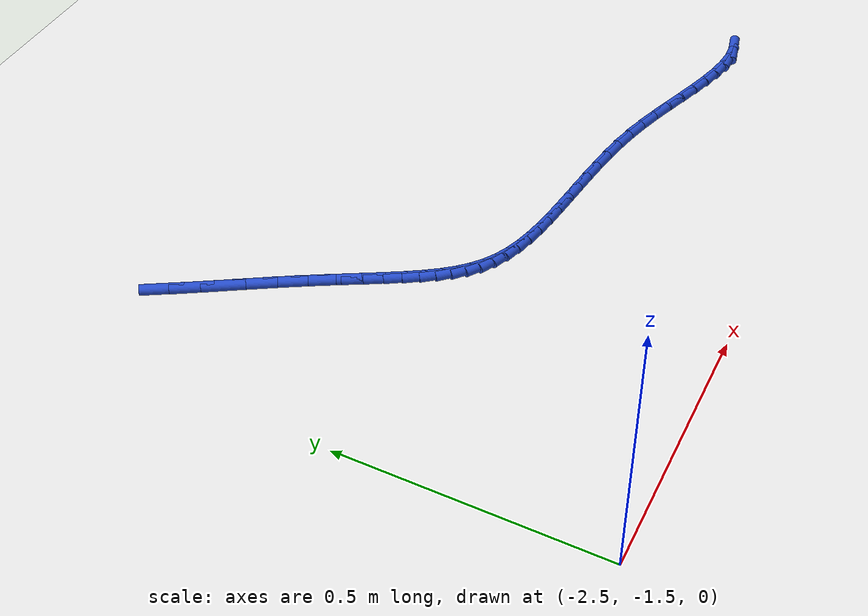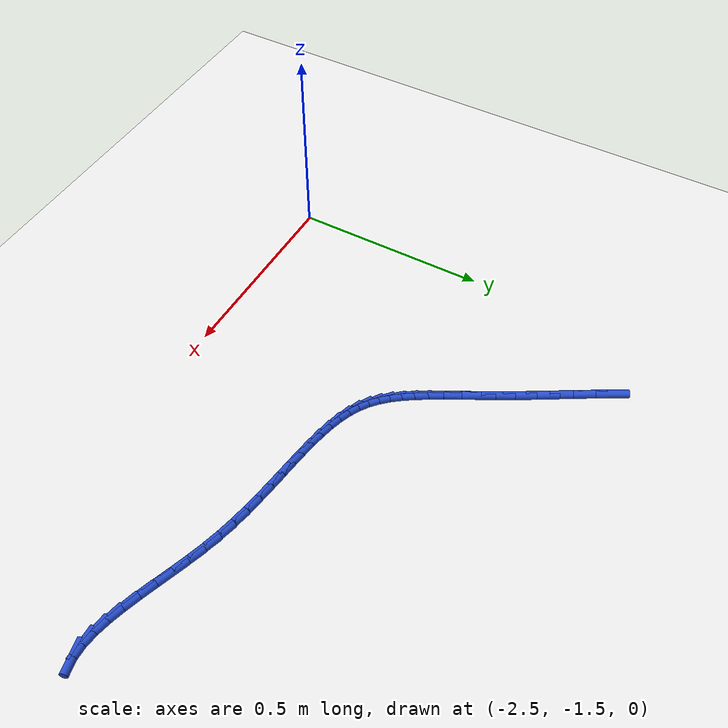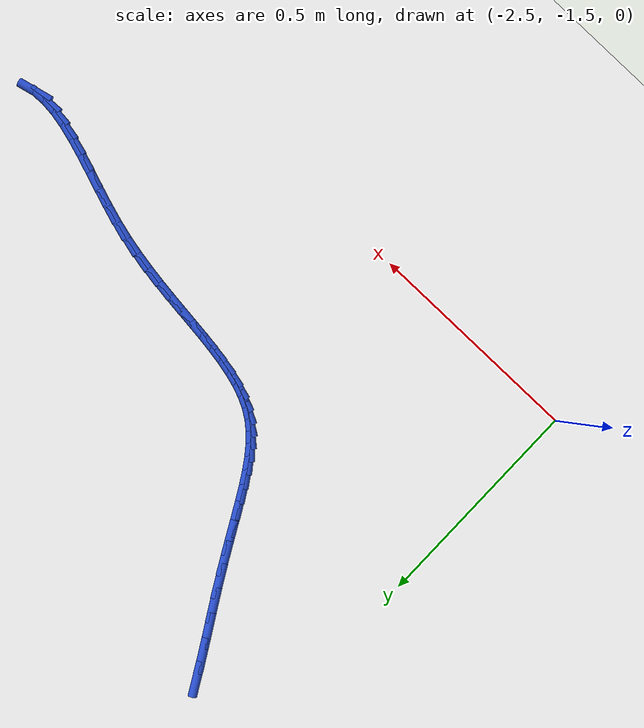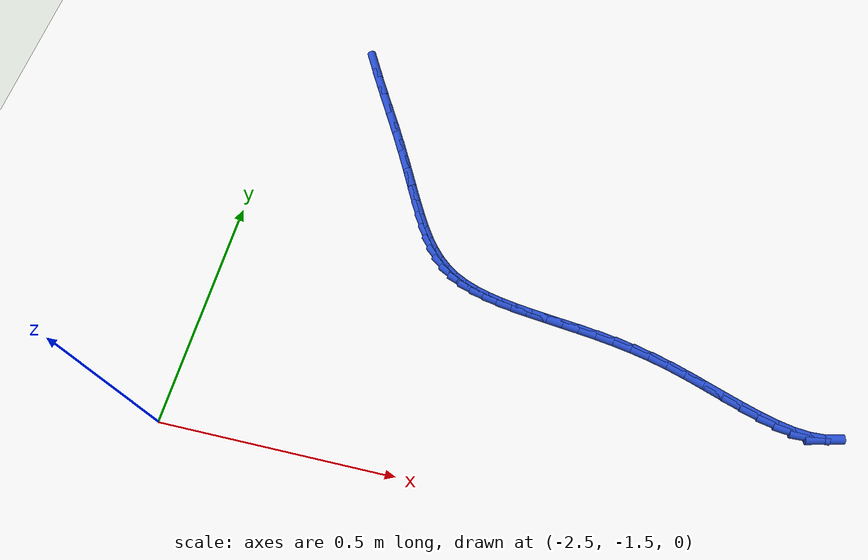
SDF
<sdf version="1.6">
 <world name="default">
  <model name="ground_plane">
   <static>1</static>
   <link name="link">
    <collision name="collision">
     <geometry><plane><normal>0 0 1</normal><size>100 100</size></plane></geometry>
     <surface><friction><ode><mu>100</mu><mu2>50</mu2></ode></friction></surface>
    </collision>
    <visual name="visual">
     <cast_shadows>0</cast_shadows>
     <geometry><plane><normal>0 0 1</normal><size>100 100</size></plane></geometry>
     <material>
      <script><uri>file://media/materials/scripts/gazebo.material</uri><name>Gazebo/WhiteGlow</name></script>
     </material>
    </visual>
   </link>
  </model>
  <model name="line">
   <link name="link_136">
    <pose>-2.316672397841152 -0.5520145446513346 0.01 0 1.57 -1.0511689099415722</pose>
    <collision name="collision">
     <geometry><cylinder><radius>0.01</radius><length>0.08</length></cylinder></geometry>
    </collision>
    <visual name="visual">
     <material>
      <script><name>Gazebo/Blue</name><uri>file://media/materials/scripts/gazebo.material</uri></script>
     </material>
     <geometry><cylinder><radius>0.01</radius><length>0.08</length></cylinder></geometry>
    </visual>
   </link>
   <link name="link_137">
    <pose>-2.290353363501236 -0.5980214366575378 0.01 0 1.57 -1.036645333680963</pose>
    <collision name="collision">
     <geometry><cylinder><radius>0.01</radius><length>0.08</length></cylinder></geometry>
    </collision>
    <visual name="visual">
     <material>
      <script><name>Gazebo/Blue</name><uri>file://media/materials/scripts/gazebo.material</uri></script>
     </material>
     <geometry><cylinder><radius>0.01</radius><length>0.08</length></cylinder></geometry>
    </visual>
   </link>
   <link name="link_138">
    <pose>-2.261907424860816 -0.6461120844949397 0.01 0 1.57 -1.0329047436988237</pose>
    <collision name="collision">
     <geometry><cylinder><radius>0.01</radius><length>0.08</length></cylinder></geometry>
    </collision>
    <visual name="visual">
     <material>
      <script><name>Gazebo/Blue</name><uri>file://media/materials/scripts/gazebo.material</uri></script>
     </material>
     <geometry><cylinder><radius>0.01</radius><length>0.08</length></cylinder></geometry>
    </visual>
   </link>
   <link name="link_139">
    <pose>-2.2330569253531407 -0.6944729363167967 0.01 0 1.57 -1.0391831996601</pose>
    <collision name="collision">
     <geometry><cylinder><radius>0.01</radius><length>0.08</length></cylinder></geometry>
    </collision>
    <visual name="visual">
     <material>
      <script><name>Gazebo/Blue</name><uri>file://media/materials/scripts/gazebo.material</uri></script>
     </material>
     <geometry><cylinder><radius>0.01</radius><length>0.08</length></cylinder></geometry>
    </visual>
   </link>
   <link name="link_140">
    <pose>-2.205524207258031 -0.7412904412593584 0.01 0 1.57 -1.0541353261785522</pose>
    <collision name="collision">
     <geometry><cylinder><radius>0.01</radius><length>0.08</length></cylinder></geometry>
    </collision>
    <visual name="visual">
     <material>
      <script><name>Gazebo/Blue</name><uri>file://media/materials/scripts/gazebo.material</uri></script>
     </material>
     <geometry><cylinder><radius>0.01</radius><length>0.08</length></cylinder></geometry>
    </visual>
   </link>
   <link name="link_141">
    <pose>-2.1806458718883723 -0.7850797918117443 0.01 0 1.57 -1.066630038948523</pose>
    <collision name="collision">
     <geometry><cylinder><radius>0.01</radius><length>0.08</length></cylinder></geometry>
    </collision>
    <visual name="visual">
     <material>
      <script><name>Gazebo/Blue</name><uri>file://media/materials/scripts/gazebo.material</uri></script>
     </material>
     <geometry><cylinder><radius>0.01</radius><length>0.08</length></cylinder></geometry>
    </visual>
   </link>
   <link name="link_142">
    <pose>-2.158281739668689 -0.8256147501829274 0.01 0 1.57 -1.072115189011889</pose>
    <collision name="collision">
     <geometry><cylinder><radius>0.01</radius><length>0.08</length></cylinder></geometry>
    </collision>
    <visual name="visual">
     <material>
      <script><name>Gazebo/Blue</name><uri>file://media/materials/scripts/gazebo.material</uri></script>
     </material>
     <geometry><cylinder><radius>0.01</radius><length>0.08</length></cylinder></geometry>
    </visual>
   </link>
   <link name="link_143">
    <pose>-2.137938277713015 -0.8629702199228185 0.01 0 1.57 -1.0684388120397101</pose>
    <collision name="collision">
     <geometry><cylinder><radius>0.01</radius><length>0.08</length></cylinder></geometry>
    </collision>
    <visual name="visual">
     <material>
      <script><name>Gazebo/Blue</name><uri>file://media/materials/scripts/gazebo.material</uri></script>
     </material>
     <geometry><cylinder><radius>0.01</radius><length>0.08</length></cylinder></geometry>
    </visual>
   </link>
   <link name="link_144">
    <pose>-2.119121953135384 -0.8972211045813286 0.01 0 1.57 -1.0530509741519318</pose>
    <collision name="collision">
     <geometry><cylinder><radius>0.01</radius><length>0.08</length></cylinder></geometry>
    </collision>
    <visual name="visual">
     <material>
      <script><name>Gazebo/Blue</name><uri>file://media/materials/scripts/gazebo.material</uri></script>
     </material>
     <geometry><cylinder><radius>0.01</radius><length>0.08</length></cylinder></geometry>
    </visual>
   </link>
   <link name="link_145">
    <pose>-2.1013392330498344 -0.9284423077083669 0.01 0 1.57 -1.0230529833752908</pose>
    <collision name="collision">
     <geometry><cylinder><radius>0.01</radius><length>0.08</length></cylinder></geometry>
    </collision>
    <visual name="visual">
     <material>
      <script><name>Gazebo/Blue</name><uri>file://media/materials/scripts/gazebo.material</uri></script>
     </material>
     <geometry><cylinder><radius>0.01</radius><length>0.08</length></cylinder></geometry>
    </visual>
   </link>
   <link name="link_146">
    <pose>-2.084096584570397 -0.9567087328538445 0.01 0 1.57 -0.9754196909352094</pose>
    <collision name="collision">
     <geometry><cylinder><radius>0.01</radius><length>0.08</length></cylinder></geometry>
    </collision>
    <visual name="visual">
     <material>
      <script><name>Gazebo/Blue</name><uri>file://media/materials/scripts/gazebo.material</uri></script>
     </material>
     <geometry><cylinder><radius>0.01</radius><length>0.08</length></cylinder></geometry>
    </visual>
   </link>
   <link name="link_147">
    <pose>-2.066900474811108 -0.9820952835676717 0.01 0 1.57 -0.9075591068767468</pose>
    <collision name="collision">
     <geometry><cylinder><radius>0.01</radius><length>0.08</length></cylinder></geometry>
    </collision>
    <visual name="visual">
     <material>
      <script><name>Gazebo/Blue</name><uri>file://media/materials/scripts/gazebo.material</uri></script>
     </material>
     <geometry><cylinder><radius>0.01</radius><length>0.08</length></cylinder></geometry>
    </visual>
   </link>
   <link name="link_148">
    <pose>-2.0492573708860022 -1.0046768633997598 0.01 0 1.57 -0.8183737637136564</pose>
    <collision name="collision">
     <geometry><cylinder><radius>0.01</radius><length>0.08</length></cylinder></geometry>
    </collision>
    <visual name="visual">
     <material>
      <script><name>Gazebo/Blue</name><uri>file://media/materials/scripts/gazebo.material</uri></script>
     </material>
     <geometry><cylinder><radius>0.01</radius><length>0.08</length></cylinder></geometry>
    </visual>
   </link>
   <link name="link_149">
    <pose>-2.030673739909115 -1.0245283759000183 0.01 0 1.57 -0.7097289984119729</pose>
    <collision name="collision">
     <geometry><cylinder><radius>0.01</radius><length>0.08</length></cylinder></geometry>
    </collision>
    <visual name="visual">
     <material>
      <script><name>Gazebo/Blue</name><uri>file://media/materials/scripts/gazebo.material</uri></script>
     </material>
     <geometry><cylinder><radius>0.01</radius><length>0.08</length></cylinder></geometry>
    </visual>
   </link>
   <link name="link_150">
    <pose>-2.0106560489944796 -1.0417247246183576 0.01 0 1.57 -0.5875582443266087</pose>
    <collision name="collision">
     <geometry><cylinder><radius>0.01</radius><length>0.08</length></cylinder></geometry>
    </collision>
    <visual name="visual">
     <material>
      <script><name>Gazebo/Blue</name><uri>file://media/materials/scripts/gazebo.material</uri></script>
     </material>
     <geometry><cylinder><radius>0.01</radius><length>0.08</length></cylinder></geometry>
    </visual>
   </link>
   <link name="link_151">
    <pose>-1.9887107832509143 -1.0563408203340143 0.01 0 1.57 -0.465094078132118</pose>
    <collision name="collision">
     <geometry><cylinder><radius>0.01</radius><length>0.08</length></cylinder></geometry>
    </collision>
    <visual name="visual">
     <material>
      <script><name>Gazebo/Blue</name><uri>file://media/materials/scripts/gazebo.material</uri></script>
     </material>
     <geometry><cylinder><radius>0.01</radius><length>0.08</length></cylinder></geometry>
    </visual>
   </link>
   <link name="link_152">
    <pose>-1.9644733769165337 -1.0685033785744023 0.01 0 1.57 -0.36177064715580853</pose>
    <collision name="collision">
     <geometry><cylinder><radius>0.01</radius><length>0.08</length></cylinder></geometry>
    </collision>
    <visual name="visual">
     <material>
      <script><name>Gazebo/Blue</name><uri>file://media/materials/scripts/gazebo.material</uri></script>
     </material>
     <geometry><cylinder><radius>0.01</radius><length>0.08</length></cylinder></geometry>
    </visual>
   </link>
   <link name="link_153">
    <pose>-1.9380172288868491 -1.078515065250714 0.01 0 1.57 -0.28009820476621494</pose>
    <collision name="collision">
     <geometry><cylinder><radius>0.01</radius><length>0.08</length></cylinder></geometry>
    </collision>
    <visual name="visual">
     <material>
      <script><name>Gazebo/Blue</name><uri>file://media/materials/scripts/gazebo.material</uri></script>
     </material>
     <geometry><cylinder><radius>0.01</radius><length>0.08</length></cylinder></geometry>
    </visual>
   </link>
   <link name="link_154">
    <pose>-1.9095086332498676 -1.086715866511047 0.01 0 1.57 -0.21790110370147547</pose>
    <collision name="collision">
     <geometry><cylinder><radius>0.01</radius><length>0.08</length></cylinder></geometry>
    </collision>
    <visual name="visual">
     <material>
      <script><name>Gazebo/Blue</name><uri>file://media/materials/scripts/gazebo.material</uri></script>
     </material>
     <geometry><cylinder><radius>0.01</radius><length>0.08</length></cylinder></geometry>
    </visual>
   </link>
   <link name="link_155">
    <pose>-1.879113884093596 -1.093445768503501 0.01 0 1.57 -0.1726090751510088</pose>
    <collision name="collision">
     <geometry><cylinder><radius>0.01</radius><length>0.08</length></cylinder></geometry>
    </collision>
    <visual name="visual">
     <material>
      <script><name>Gazebo/Blue</name><uri>file://media/materials/scripts/gazebo.material</uri></script>
     </material>
     <geometry><cylinder><radius>0.01</radius><length>0.08</length></cylinder></geometry>
    </visual>
   </link>
   <link name="link_156">
    <pose>-1.846999275506039 -1.0990447573761721 0.01 0 1.57 -0.14184823405291397</pose>
    <collision name="collision">
     <geometry><cylinder><radius>0.01</radius><length>0.08</length></cylinder></geometry>
    </collision>
    <visual name="visual">
     <material>
      <script><name>Gazebo/Blue</name><uri>file://media/materials/scripts/gazebo.material</uri></script>
     </material>
     <geometry><cylinder><radius>0.01</radius><length>0.08</length></cylinder></geometry>
    </visual>
   </link>
   <link name="link_157">
    <pose>-1.8133311015752032 -1.1038528192771604 0.01 0 1.57 -0.12365809827191325</pose>
    <collision name="collision">
     <geometry><cylinder><radius>0.01</radius><length>0.08</length></cylinder></geometry>
    </collision>
    <visual name="visual">
     <material>
      <script><name>Gazebo/Blue</name><uri>file://media/materials/scripts/gazebo.material</uri></script>
     </material>
     <geometry><cylinder><radius>0.01</radius><length>0.08</length></cylinder></geometry>
    </visual>
   </link>
   <link name="link_158">
    <pose>-1.7782756563890958 -1.108209940354563 0.01 0 1.57 -0.11652009960904468</pose>
    <collision name="collision">
     <geometry><cylinder><radius>0.01</radius><length>0.08</length></cylinder></geometry>
    </collision>
    <visual name="visual">
     <material>
      <script><name>Gazebo/Blue</name><uri>file://media/materials/scripts/gazebo.material</uri></script>
     </material>
     <geometry><cylinder><radius>0.01</radius><length>0.08</length></cylinder></geometry>
    </visual>
   </link>
   <link name="link_159">
    <pose>-1.7419992340357222 -1.112456106756478 0.01 0 1.57 -0.11930917419888622</pose>
    <collision name="collision">
     <geometry><cylinder><radius>0.01</radius><length>0.08</length></cylinder></geometry>
    </collision>
    <visual name="visual">
     <material>
      <script><name>Gazebo/Blue</name><uri>file://media/materials/scripts/gazebo.material</uri></script>
     </material>
     <geometry><cylinder><radius>0.01</radius><length>0.08</length></cylinder></geometry>
    </visual>
   </link>
   <link name="link_160">
    <pose>-1.7046681286030885 -1.116931304631004 0.01 0 1.57 -0.1312217732455574</pose>
    <collision name="collision">
     <geometry><cylinder><radius>0.01</radius><length>0.08</length></cylinder></geometry>
    </collision>
    <visual name="visual">
     <material>
      <script><name>Gazebo/Blue</name><uri>file://media/materials/scripts/gazebo.material</uri></script>
     </material>
     <geometry><cylinder><radius>0.01</radius><length>0.08</length></cylinder></geometry>
    </visual>
   </link>
   <link name="link_161">
    <pose>-1.6664486341792009 -1.1219755201262387 0.01 0 1.57 -0.15170108787693526</pose>
    <collision name="collision">
     <geometry><cylinder><radius>0.01</radius><length>0.08</length></cylinder></geometry>
    </collision>
    <visual name="visual">
     <material>
      <script><name>Gazebo/Blue</name><uri>file://media/materials/scripts/gazebo.material</uri></script>
     </material>
     <geometry><cylinder><radius>0.01</radius><length>0.08</length></cylinder></geometry>
    </visual>
   </link>
   <link name="link_162">
    <pose>-1.6275070448520643 -1.1279287393902806 0.01 0 1.57 -0.18036482326261932</pose>
    <collision name="collision">
     <geometry><cylinder><radius>0.01</radius><length>0.08</length></cylinder></geometry>
    </collision>
    <visual name="visual">
     <material>
      <script><name>Gazebo/Blue</name><uri>file://media/materials/scripts/gazebo.material</uri></script>
     </material>
     <geometry><cylinder><radius>0.01</radius><length>0.08</length></cylinder></geometry>
    </visual>
   </link>
   <link name="link_163">
    <pose>-1.5880096547096876 -1.1351309485712278 0.01 0 1.57 -0.21693451267381825</pose>
    <collision name="collision">
     <geometry><cylinder><radius>0.01</radius><length>0.08</length></cylinder></geometry>
    </collision>
    <visual name="visual">
     <material>
      <script><name>Gazebo/Blue</name><uri>file://media/materials/scripts/gazebo.material</uri></script>
     </material>
     <geometry><cylinder><radius>0.01</radius><length>0.08</length></cylinder></geometry>
    </visual>
   </link>
   <link name="link_164">
    <pose>-1.5481227578400751 -1.1439221338171786 0.01 0 1.57 -0.26099706478267204</pose>
    <collision name="collision">
     <geometry><cylinder><radius>0.01</radius><length>0.08</length></cylinder></geometry>
    </collision>
    <visual name="visual">
     <material>
      <script><name>Gazebo/Blue</name><uri>file://media/materials/scripts/gazebo.material</uri></script>
     </material>
     <geometry><cylinder><radius>0.01</radius><length>0.08</length></cylinder></geometry>
    </visual>
   </link>
   <link name="link_165">
    <pose>-1.5080134126292237 -1.1546349167637222 0.01 0 1.57 -0.30296954171576435</pose>
    <collision name="collision">
     <geometry><cylinder><radius>0.01</radius><length>0.08</length></cylinder></geometry>
    </collision>
    <visual name="visual">
     <material>
      <script><name>Gazebo/Blue</name><uri>file://media/materials/scripts/gazebo.material</uri></script>
     </material>
     <geometry><cylinder><radius>0.01</radius><length>0.08</length></cylinder></geometry>
    </visual>
   </link>
   <link name="link_166">
    <pose>-1.4678928463636862 -1.167176322714948 0.01 0 1.57 -0.32945890005482553</pose>
    <collision name="collision">
     <geometry><cylinder><radius>0.01</radius><length>0.08</length></cylinder></geometry>
    </collision>
    <visual name="visual">
     <material>
      <script><name>Gazebo/Blue</name><uri>file://media/materials/scripts/gazebo.material</uri></script>
     </material>
     <geometry><cylinder><radius>0.01</radius><length>0.08</length></cylinder></geometry>
    </visual>
   </link>
   <link name="link_167">
    <pose>-1.4280397942293501 -1.1808028940799677 0.01 0 1.57 -0.3402517675445505</pose>
    <collision name="collision">
     <geometry><cylinder><radius>0.01</radius><length>0.08</length></cylinder></geometry>
    </collision>
    <visual name="visual">
     <material>
      <script><name>Gazebo/Blue</name><uri>file://media/materials/scripts/gazebo.material</uri></script>
     </material>
     <geometry><cylinder><radius>0.01</radius><length>0.08</length></cylinder></geometry>
    </visual>
   </link>
   <link name="link_168">
    <pose>-1.3887386884679884 -1.1947162783971745 0.01 0 1.57 -0.335265732886131</pose>
    <collision name="collision">
     <geometry><cylinder><radius>0.01</radius><length>0.08</length></cylinder></geometry>
    </collision>
    <visual name="visual">
     <material>
      <script><name>Gazebo/Blue</name><uri>file://media/materials/scripts/gazebo.material</uri></script>
     </material>
     <geometry><cylinder><radius>0.01</radius><length>0.08</length></cylinder></geometry>
    </visual>
   </link>
   <link name="link_169">
    <pose>-1.3502739613213735 -1.2081181232049614 0.01 0 1.57 -0.313145981653459</pose>
    <collision name="collision">
     <geometry><cylinder><radius>0.01</radius><length>0.08</length></cylinder></geometry>
    </collision>
    <visual name="visual">
     <material>
      <script><name>Gazebo/Blue</name><uri>file://media/materials/scripts/gazebo.material</uri></script>
     </material>
     <geometry><cylinder><radius>0.01</radius><length>0.08</length></cylinder></geometry>
    </visual>
   </link>
   <link name="link_170">
    <pose>-1.3129300450312786 -1.2202100760417214 0.01 0 1.57 -0.27096605962898695</pose>
    <collision name="collision">
     <geometry><cylinder><radius>0.01</radius><length>0.08</length></cylinder></geometry>
    </collision>
    <visual name="visual">
     <material>
      <script><name>Gazebo/Blue</name><uri>file://media/materials/scripts/gazebo.material</uri></script>
     </material>
     <geometry><cylinder><radius>0.01</radius><length>0.08</length></cylinder></geometry>
    </visual>
   </link>
   <link name="link_171">
    <pose>-1.2769913718394788 -1.2301937844458473 0.01 0 1.57 -0.20376910694771191</pose>
    <collision name="collision">
     <geometry><cylinder><radius>0.01</radius><length>0.08</length></cylinder></geometry>
    </collision>
    <visual name="visual">
     <material>
      <script><name>Gazebo/Blue</name><uri>file://media/materials/scripts/gazebo.material</uri></script>
     </material>
     <geometry><cylinder><radius>0.01</radius><length>0.08</length></cylinder></geometry>
    </visual>
   </link>
   <link name="link_172">
    <pose>-1.2427423739877457 -1.2372708959557317 0.01 0 1.57 -0.1041048019341289</pose>
    <collision name="collision">
     <geometry><cylinder><radius>0.01</radius><length>0.08</length></cylinder></geometry>
    </collision>
    <visual name="visual">
     <material>
      <script><name>Gazebo/Blue</name><uri>file://media/materials/scripts/gazebo.material</uri></script>
     </material>
     <geometry><cylinder><radius>0.01</radius><length>0.08</length></cylinder></geometry>
    </visual>
   </link>
   <link name="link_173">
    <pose>-1.2104674837178535 -1.2406430581097687 0.01 0 1.57 0.03766629391386478</pose>
    <collision name="collision">
     <geometry><cylinder><radius>0.01</radius><length>0.08</length></cylinder></geometry>
    </collision>
    <visual name="visual">
     <material>
      <script><name>Gazebo/Blue</name><uri>file://media/materials/scripts/gazebo.material</uri></script>
     </material>
     <geometry><cylinder><radius>0.01</radius><length>0.08</length></cylinder></geometry>
    </visual>
   </link>
   <link name="link_174">
    <pose>-1.1804511332715748 -1.23951191844635 0.01 0 1.57 0.2300029245848729</pose>
    <collision name="collision">
     <geometry><cylinder><radius>0.01</radius><length>0.08</length></cylinder></geometry>
    </collision>
    <visual name="visual">
     <material>
      <script><name>Gazebo/Blue</name><uri>file://media/materials/scripts/gazebo.material</uri></script>
     </material>
     <geometry><cylinder><radius>0.01</radius><length>0.08</length></cylinder></geometry>
    </visual>
   </link>
  </model>
 </world>
</sdf>
